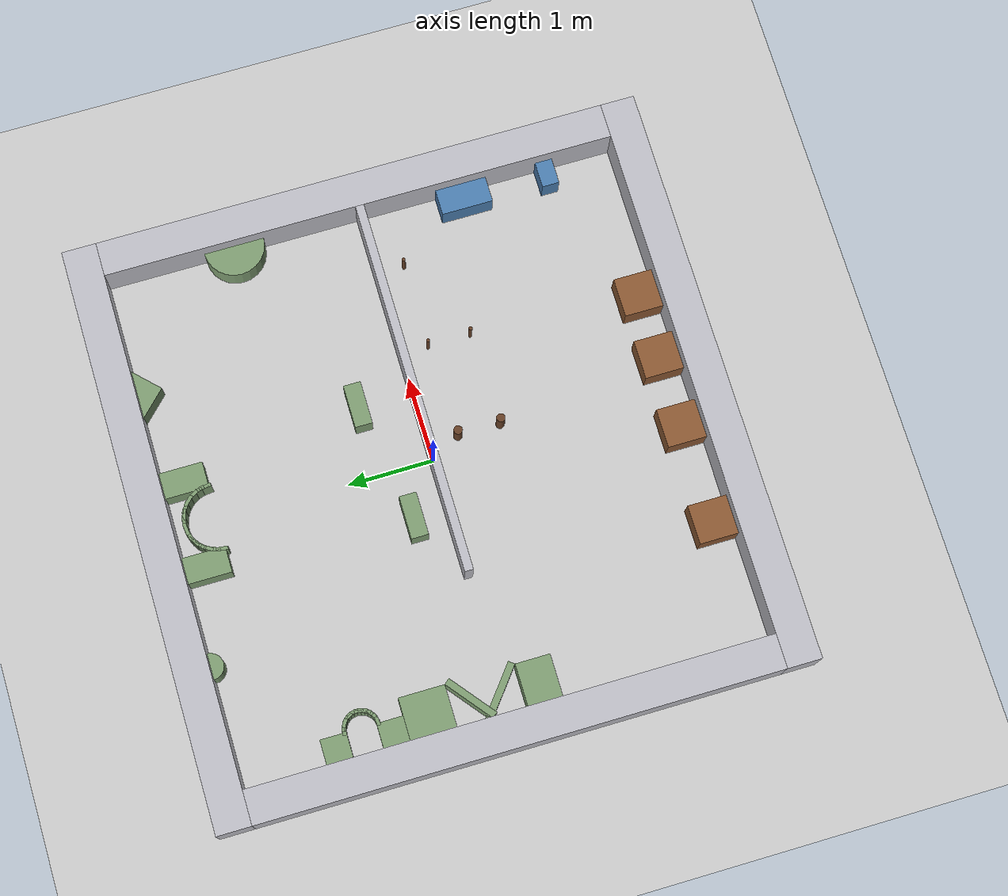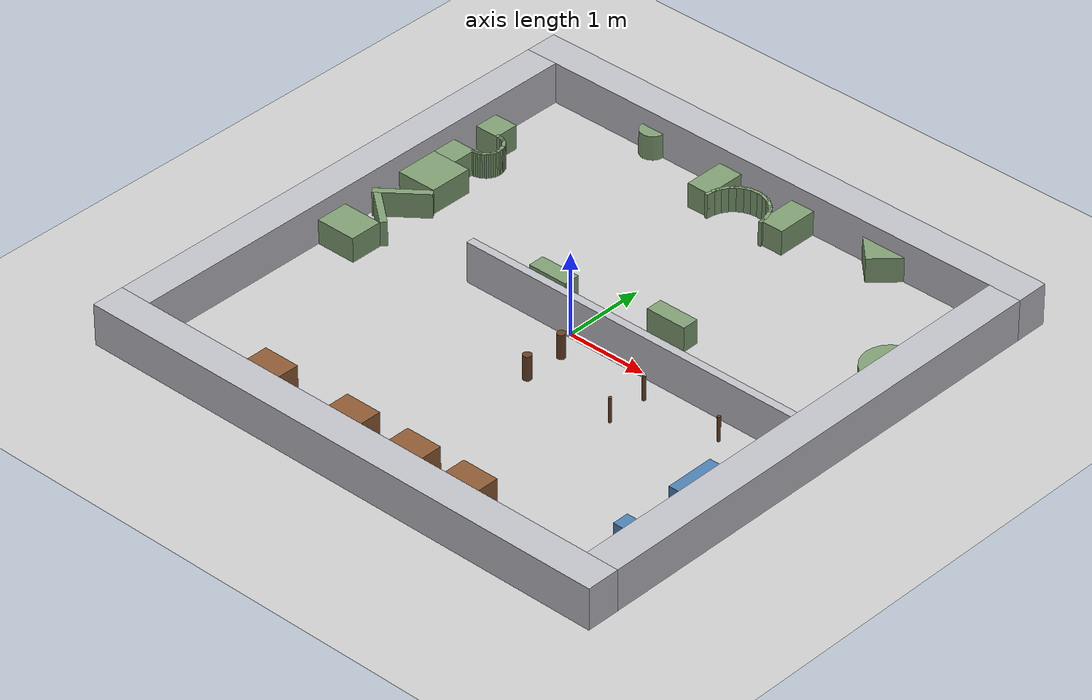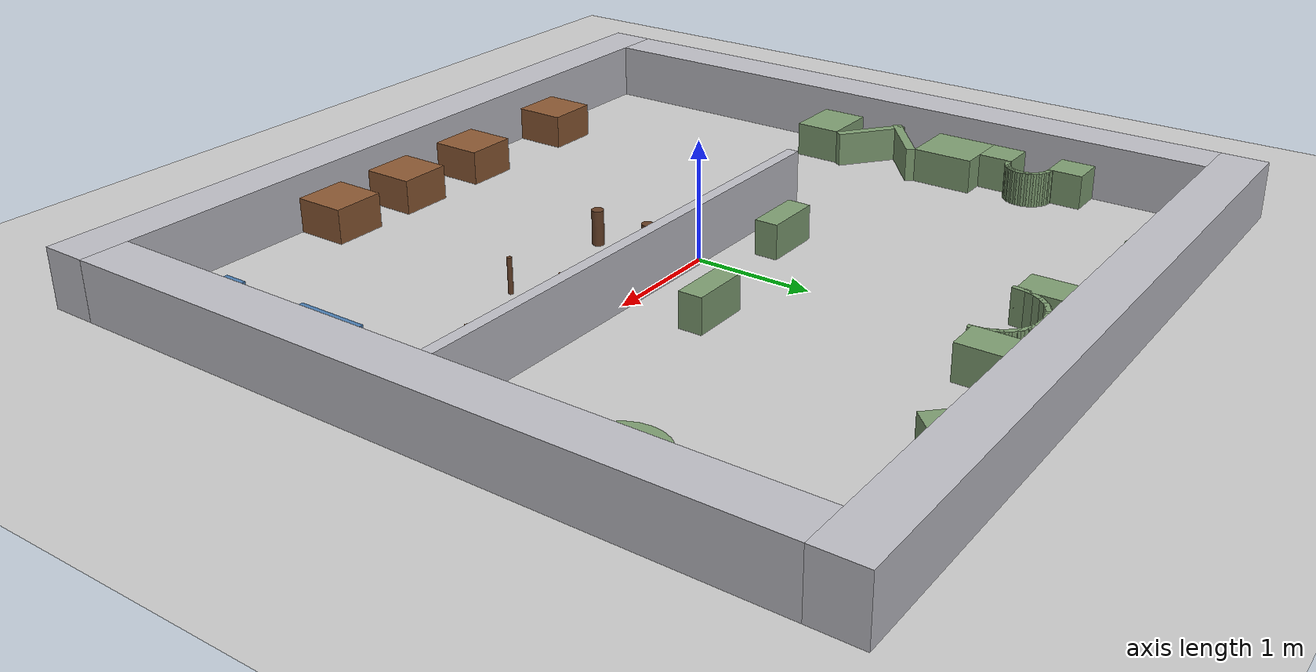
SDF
<?xml version="1.0" ?>
<sdf version="1.10">
  <world name="default">
    <scene>
      <shadows>false</shadows>
      <ambient>0.4 0.4 0.4 1</ambient>
      <background>0.7 0.7 0.7 1</background>
    </scene>
    <gui fullscreen="false">
      <camera name="user_camera">
        <pose>-6 0 7 0 0.85 0</pose>
        <view_controller>orbit</view_controller>
        <projection_type>perspective</projection_type>
      </camera>
    </gui>
    <physics type="ode">
      <real_time_update_rate>1000</real_time_update_rate>
      <max_step_size>0.001</max_step_size>
      <real_time_factor>1</real_time_factor>
      <ode>
        <solver>
          <type>quick</type>
          <iters>150</iters>
          <precon_iters>0</precon_iters>
          <sor>1.4</sor>
          <use_dynamic_moi_rescaling>true</use_dynamic_moi_rescaling>
        </solver>
        <constraints>
          <cfm>1e-05</cfm>
          <erp>0.2</erp>
          <contact_max_correcting_vel>2000</contact_max_correcting_vel>
          <contact_surface_layer>0.01</contact_surface_layer>
        </constraints>
      </ode>
    </physics>
    <plugin name="gz::sim::systems::Physics" filename="gz-sim-physics-system"/>
    <plugin name="gz::sim::systems::UserCommands" filename="gz-sim-user-commands-system"/>
    <plugin name="gz::sim::systems::SceneBroadcaster" filename="gz-sim-scene-broadcaster-system"/>
    <plugin name="gz::sim::systems::Sensors" filename="gz-sim-sensors-system">
      <render_engine>ogre2</render_engine>
    </plugin>
    <plugin name="gz::sim::systems::Imu" filename="gz-sim-imu-system"/>
    <plugin name="gz::sim::systems::Contact" filename="gz-sim-contact-system"/>
    <gravity>0 0 -9.8</gravity>
    <atmosphere type="adiabatic"/>

    <include>
      <uri>model://ground plane</uri>
      <name>ground_plane</name>
      <pose>0 0 0 0 0 0</pose>
    </include>

    <light name="sun" type="directional">
      <cast_shadows>false</cast_shadows>
      <pose>0 0 10 0 0 0</pose>
      <diffuse>0.8 0.8 0.8 1</diffuse>
      <specular>0.2 0.2 0.2 1</specular>
      <intensity>3</intensity>
      <direction>-0.5 0.1 -0.9</direction>
    </light>
    <model name="wall_south">
      <static>true</static>
      <link name="link">
        <collision name="col_0">
          <pose>0.0000 -3.2000 0.250 0 0 0.00000</pose>
          <geometry><box><size>6.8000 0.4000 0.500</size></box></geometry>
        </collision>
        <visual name="vis_0">
          <pose>0.0000 -3.2000 0.250 0 0 0.00000</pose>
          <geometry><box><size>6.8000 0.4000 0.500</size></box></geometry>
          <material><diffuse>0.75 0.75 0.78 1</diffuse><ambient>0.75 0.75 0.78 1</ambient></material>
        </visual>
      </link>
    </model>

    <model name="wall_north">
      <static>true</static>
      <link name="link">
        <collision name="col_0">
          <pose>0.0000 3.2000 0.250 0 0 0.00000</pose>
          <geometry><box><size>6.8000 0.4000 0.500</size></box></geometry>
        </collision>
        <visual name="vis_0">
          <pose>0.0000 3.2000 0.250 0 0 0.00000</pose>
          <geometry><box><size>6.8000 0.4000 0.500</size></box></geometry>
          <material><diffuse>0.75 0.75 0.78 1</diffuse><ambient>0.75 0.75 0.78 1</ambient></material>
        </visual>
      </link>
    </model>

    <model name="wall_west">
      <static>true</static>
      <link name="link">
        <collision name="col_0">
          <pose>-3.2000 0.0000 0.250 0 0 0.00000</pose>
          <geometry><box><size>0.4000 6.0000 0.500</size></box></geometry>
        </collision>
        <visual name="vis_0">
          <pose>-3.2000 0.0000 0.250 0 0 0.00000</pose>
          <geometry><box><size>0.4000 6.0000 0.500</size></box></geometry>
          <material><diffuse>0.75 0.75 0.78 1</diffuse><ambient>0.75 0.75 0.78 1</ambient></material>
        </visual>
      </link>
    </model>

    <model name="wall_east">
      <static>true</static>
      <link name="link">
        <collision name="col_0">
          <pose>3.2000 0.0000 0.250 0 0 0.00000</pose>
          <geometry><box><size>0.4000 6.0000 0.500</size></box></geometry>
        </collision>
        <visual name="vis_0">
          <pose>3.2000 0.0000 0.250 0 0 0.00000</pose>
          <geometry><box><size>0.4000 6.0000 0.500</size></box></geometry>
          <material><diffuse>0.75 0.75 0.78 1</diffuse><ambient>0.75 0.75 0.78 1</ambient></material>
        </visual>
      </link>
    </model>

    <model name="A1_tooth">
      <static>true</static>
      <link name="link">
        <collision name="col_0">
          <pose>-1.5750 -2.7750 0.150 0 0 0.00000</pose>
          <geometry><box><size>0.4500 0.4500 0.300</size></box></geometry>
        </collision>
        <visual name="vis_0">
          <pose>-1.5750 -2.7750 0.150 0 0 0.00000</pose>
          <geometry><box><size>0.4500 0.4500 0.300</size></box></geometry>
          <material><diffuse>0.55 0.35 0.20 1</diffuse><ambient>0.55 0.35 0.20 1</ambient></material>
        </visual>
      </link>
    </model>

    <model name="A2_tooth">
      <static>true</static>
      <link name="link">
        <collision name="col_0">
          <pose>-0.4270 -2.7750 0.150 0 0 0.00000</pose>
          <geometry><box><size>0.4500 0.4500 0.300</size></box></geometry>
        </collision>
        <visual name="vis_0">
          <pose>-0.4270 -2.7750 0.150 0 0 0.00000</pose>
          <geometry><box><size>0.4500 0.4500 0.300</size></box></geometry>
          <material><diffuse>0.55 0.35 0.20 1</diffuse><ambient>0.55 0.35 0.20 1</ambient></material>
        </visual>
      </link>
    </model>

    <model name="A3_tooth">
      <static>true</static>
      <link name="link">
        <collision name="col_0">
          <pose>0.4069 -2.7750 0.150 0 0 0.00000</pose>
          <geometry><box><size>0.4500 0.4500 0.300</size></box></geometry>
        </collision>
        <visual name="vis_0">
          <pose>0.4069 -2.7750 0.150 0 0 0.00000</pose>
          <geometry><box><size>0.4500 0.4500 0.300</size></box></geometry>
          <material><diffuse>0.55 0.35 0.20 1</diffuse><ambient>0.55 0.35 0.20 1</ambient></material>
        </visual>
      </link>
    </model>

    <model name="A4_tooth">
      <static>true</static>
      <link name="link">
        <collision name="col_0">
          <pose>1.1710 -2.7750 0.150 0 0 0.00000</pose>
          <geometry><box><size>0.4500 0.4500 0.300</size></box></geometry>
        </collision>
        <visual name="vis_0">
          <pose>1.1710 -2.7750 0.150 0 0 0.00000</pose>
          <geometry><box><size>0.4500 0.4500 0.300</size></box></geometry>
          <material><diffuse>0.55 0.35 0.20 1</diffuse><ambient>0.55 0.35 0.20 1</ambient></material>
        </visual>
      </link>
    </model>

    <model name="peninsula">
      <static>true</static>
      <link name="link">
        <collision name="col_0">
          <pose>0.8000 0.0000 0.250 0 0 0.00000</pose>
          <geometry><box><size>4.4000 0.1000 0.500</size></box></geometry>
        </collision>
        <visual name="vis_0">
          <pose>0.8000 0.0000 0.250 0 0 0.00000</pose>
          <geometry><box><size>4.4000 0.1000 0.500</size></box></geometry>
          <material><diffuse>0.75 0.75 0.78 1</diffuse><ambient>0.75 0.75 0.78 1</ambient></material>
        </visual>
      </link>
    </model>

    <model name="B1_block_small">
      <static>true</static>
      <link name="link">
        <collision name="col_0">
          <pose>2.8500 -2.2000 0.150 0 0 0.00000</pose>
          <geometry><box><size>0.3000 0.2000 0.300</size></box></geometry>
        </collision>
        <visual name="vis_0">
          <pose>2.8500 -2.2000 0.150 0 0 0.00000</pose>
          <geometry><box><size>0.3000 0.2000 0.300</size></box></geometry>
          <material><diffuse>0.30 0.50 0.70 1</diffuse><ambient>0.30 0.50 0.70 1</ambient></material>
        </visual>
      </link>
    </model>

    <model name="B2_block_wide">
      <static>true</static>
      <link name="link">
        <collision name="col_0">
          <pose>2.8500 -1.2000 0.150 0 0 0.00000</pose>
          <geometry><box><size>0.3000 0.6000 0.300</size></box></geometry>
        </collision>
        <visual name="vis_0">
          <pose>2.8500 -1.2000 0.150 0 0 0.00000</pose>
          <geometry><box><size>0.3000 0.6000 0.300</size></box></geometry>
          <material><diffuse>0.30 0.50 0.70 1</diffuse><ambient>0.30 0.50 0.70 1</ambient></material>
        </visual>
      </link>
    </model>

    <model name="B3_leg">
      <static>true</static>
      <link name="link">
        <collision name="col_0">
          <pose>2.3000 -0.3200 0.150 0 0 0</pose>
          <geometry><cylinder><radius>0.0200</radius><length>0.300</length></cylinder></geometry>
        </collision>
        <visual name="vis_0">
          <pose>2.3000 -0.3200 0.150 0 0 0</pose>
          <geometry><cylinder><radius>0.0200</radius><length>0.300</length></cylinder></geometry>
          <material><diffuse>0.40 0.25 0.15 1</diffuse><ambient>0.40 0.25 0.15 1</ambient></material>
        </visual>
      </link>
    </model>

    <model name="B4_legs_pair">
      <static>true</static>
      <link name="link">
        <collision name="col_0">
          <pose>1.3000 -0.3200 0.150 0 0 0</pose>
          <geometry><cylinder><radius>0.0200</radius><length>0.300</length></cylinder></geometry>
        </collision>
        <visual name="vis_0">
          <pose>1.3000 -0.3200 0.150 0 0 0</pose>
          <geometry><cylinder><radius>0.0200</radius><length>0.300</length></cylinder></geometry>
          <material><diffuse>0.40 0.25 0.15 1</diffuse><ambient>0.40 0.25 0.15 1</ambient></material>
        </visual>
        <collision name="col_1">
          <pose>1.3000 -0.8200 0.150 0 0 0</pose>
          <geometry><cylinder><radius>0.0200</radius><length>0.300</length></cylinder></geometry>
        </collision>
        <visual name="vis_1">
          <pose>1.3000 -0.8200 0.150 0 0 0</pose>
          <geometry><cylinder><radius>0.0200</radius><length>0.300</length></cylinder></geometry>
          <material><diffuse>0.40 0.25 0.15 1</diffuse><ambient>0.40 0.25 0.15 1</ambient></material>
        </visual>
      </link>
    </model>

    <model name="B5_thick_legs_pair">
      <static>true</static>
      <link name="link">
        <collision name="col_0">
          <pose>0.2000 -0.3500 0.150 0 0 0</pose>
          <geometry><cylinder><radius>0.0500</radius><length>0.300</length></cylinder></geometry>
        </collision>
        <visual name="vis_0">
          <pose>0.2000 -0.3500 0.150 0 0 0</pose>
          <geometry><cylinder><radius>0.0500</radius><length>0.300</length></cylinder></geometry>
          <material><diffuse>0.40 0.25 0.15 1</diffuse><ambient>0.40 0.25 0.15 1</ambient></material>
        </visual>
        <collision name="col_1">
          <pose>0.2000 -0.8500 0.150 0 0 0</pose>
          <geometry><cylinder><radius>0.0500</radius><length>0.300</length></cylinder></geometry>
        </collision>
        <visual name="vis_1">
          <pose>0.2000 -0.8500 0.150 0 0 0</pose>
          <geometry><cylinder><radius>0.0500</radius><length>0.300</length></cylinder></geometry>
          <material><diffuse>0.40 0.25 0.15 1</diffuse><ambient>0.40 0.25 0.15 1</ambient></material>
        </visual>
      </link>
    </model>

    <model name="C2_block_gap_025">
      <static>true</static>
      <link name="link">
        <collision name="col_0">
          <pose>-0.6000 0.4000 0.150 0 0 0.00000</pose>
          <geometry><box><size>0.5000 0.2000 0.300</size></box></geometry>
        </collision>
        <visual name="vis_0">
          <pose>-0.6000 0.4000 0.150 0 0 0.00000</pose>
          <geometry><box><size>0.5000 0.2000 0.300</size></box></geometry>
          <material><diffuse>0.50 0.62 0.45 1</diffuse><ambient>0.50 0.62 0.45 1</ambient></material>
        </visual>
      </link>
    </model>

    <model name="C3_block_gap_050">
      <static>true</static>
      <link name="link">
        <collision name="col_0">
          <pose>0.8000 0.6500 0.150 0 0 0.00000</pose>
          <geometry><box><size>0.5000 0.2000 0.300</size></box></geometry>
        </collision>
        <visual name="vis_0">
          <pose>0.8000 0.6500 0.150 0 0 0.00000</pose>
          <geometry><box><size>0.5000 0.2000 0.300</size></box></geometry>
          <material><diffuse>0.50 0.62 0.45 1</diffuse><ambient>0.50 0.62 0.45 1</ambient></material>
        </visual>
      </link>
    </model>

    <model name="C4_convex_R035">
      <static>true</static>
      <link name="link">
        <collision name="col_0">
          <pose>3.0000 1.5000 0.150 0 0 0</pose>
          <geometry><cylinder><radius>0.3500</radius><length>0.300</length></cylinder></geometry>
        </collision>
        <visual name="vis_0">
          <pose>3.0000 1.5000 0.150 0 0 0</pose>
          <geometry><cylinder><radius>0.3500</radius><length>0.300</length></cylinder></geometry>
          <material><diffuse>0.50 0.62 0.45 1</diffuse><ambient>0.50 0.62 0.45 1</ambient></material>
        </visual>
      </link>
    </model>

    <model name="C1_wedge">
      <static>true</static>
      <link name="link">
        <collision name="col_0">
          <pose>1.6000 3.0000 0.150 0 0 0.78540</pose>
          <geometry><box><size>0.4000 0.4000 0.300</size></box></geometry>
        </collision>
        <visual name="vis_0">
          <pose>1.6000 3.0000 0.150 0 0 0.78540</pose>
          <geometry><box><size>0.4000 0.4000 0.300</size></box></geometry>
          <material><diffuse>0.50 0.62 0.45 1</diffuse><ambient>0.50 0.62 0.45 1</ambient></material>
        </visual>
      </link>
    </model>

    <model name="C5_concave_R035">
      <static>true</static>
      <link name="link">
        <collision name="col_0">
          <pose>0.5000 2.7500 0.150 0 0 0.00000</pose>
          <geometry><box><size>0.3000 0.5000 0.300</size></box></geometry>
        </collision>
        <visual name="vis_0">
          <pose>0.5000 2.7500 0.150 0 0 0.00000</pose>
          <geometry><box><size>0.3000 0.5000 0.300</size></box></geometry>
          <material><diffuse>0.50 0.62 0.45 1</diffuse><ambient>0.50 0.62 0.45 1</ambient></material>
        </visual>
        <collision name="col_1">
          <pose>-0.5000 2.7500 0.150 0 0 0.00000</pose>
          <geometry><box><size>0.3000 0.5000 0.300</size></box></geometry>
        </collision>
        <visual name="vis_1">
          <pose>-0.5000 2.7500 0.150 0 0 0.00000</pose>
          <geometry><box><size>0.3000 0.5000 0.300</size></box></geometry>
          <material><diffuse>0.50 0.62 0.45 1</diffuse><ambient>0.50 0.62 0.45 1</ambient></material>
        </visual>
        <collision name="col_2">
          <pose>0.3655 2.5412 0.150 0 0 1.68300</pose>
          <geometry><box><size>0.1384 0.0400 0.300</size></box></geometry>
        </collision>
        <visual name="vis_2">
          <pose>0.3655 2.5412 0.150 0 0 1.68300</pose>
          <geometry><box><size>0.1384 0.0400 0.300</size></box></geometry>
          <material><diffuse>0.50 0.62 0.45 1</diffuse><ambient>0.50 0.62 0.45 1</ambient></material>
        </visual>
        <collision name="col_3">
          <pose>0.3472 2.6215 0.150 0 0 1.90740</pose>
          <geometry><box><size>0.1384 0.0400 0.300</size></box></geometry>
        </collision>
        <visual name="vis_3">
          <pose>0.3472 2.6215 0.150 0 0 1.90740</pose>
          <geometry><box><size>0.1384 0.0400 0.300</size></box></geometry>
          <material><diffuse>0.50 0.62 0.45 1</diffuse><ambient>0.50 0.62 0.45 1</ambient></material>
        </visual>
        <collision name="col_4">
          <pose>0.3114 2.6957 0.150 0 0 2.13180</pose>
          <geometry><box><size>0.1384 0.0400 0.300</size></box></geometry>
        </collision>
        <visual name="vis_4">
          <pose>0.3114 2.6957 0.150 0 0 2.13180</pose>
          <geometry><box><size>0.1384 0.0400 0.300</size></box></geometry>
          <material><diffuse>0.50 0.62 0.45 1</diffuse><ambient>0.50 0.62 0.45 1</ambient></material>
        </visual>
        <collision name="col_5">
          <pose>0.2601 2.7601 0.150 0 0 2.35619</pose>
          <geometry><box><size>0.1384 0.0400 0.300</size></box></geometry>
        </collision>
        <visual name="vis_5">
          <pose>0.2601 2.7601 0.150 0 0 2.35619</pose>
          <geometry><box><size>0.1384 0.0400 0.300</size></box></geometry>
          <material><diffuse>0.50 0.62 0.45 1</diffuse><ambient>0.50 0.62 0.45 1</ambient></material>
        </visual>
        <collision name="col_6">
          <pose>0.1957 2.8114 0.150 0 0 2.58059</pose>
          <geometry><box><size>0.1384 0.0400 0.300</size></box></geometry>
        </collision>
        <visual name="vis_6">
          <pose>0.1957 2.8114 0.150 0 0 2.58059</pose>
          <geometry><box><size>0.1384 0.0400 0.300</size></box></geometry>
          <material><diffuse>0.50 0.62 0.45 1</diffuse><ambient>0.50 0.62 0.45 1</ambient></material>
        </visual>
        <collision name="col_7">
          <pose>0.1215 2.8472 0.150 0 0 2.80499</pose>
          <geometry><box><size>0.1384 0.0400 0.300</size></box></geometry>
        </collision>
        <visual name="vis_7">
          <pose>0.1215 2.8472 0.150 0 0 2.80499</pose>
          <geometry><box><size>0.1384 0.0400 0.300</size></box></geometry>
          <material><diffuse>0.50 0.62 0.45 1</diffuse><ambient>0.50 0.62 0.45 1</ambient></material>
        </visual>
        <collision name="col_8">
          <pose>0.0412 2.8655 0.150 0 0 3.02939</pose>
          <geometry><box><size>0.1384 0.0400 0.300</size></box></geometry>
        </collision>
        <visual name="vis_8">
          <pose>0.0412 2.8655 0.150 0 0 3.02939</pose>
          <geometry><box><size>0.1384 0.0400 0.300</size></box></geometry>
          <material><diffuse>0.50 0.62 0.45 1</diffuse><ambient>0.50 0.62 0.45 1</ambient></material>
        </visual>
        <collision name="col_9">
          <pose>-0.0412 2.8655 0.150 0 0 -3.02939</pose>
          <geometry><box><size>0.1384 0.0400 0.300</size></box></geometry>
        </collision>
        <visual name="vis_9">
          <pose>-0.0412 2.8655 0.150 0 0 -3.02939</pose>
          <geometry><box><size>0.1384 0.0400 0.300</size></box></geometry>
          <material><diffuse>0.50 0.62 0.45 1</diffuse><ambient>0.50 0.62 0.45 1</ambient></material>
        </visual>
        <collision name="col_10">
          <pose>-0.1215 2.8472 0.150 0 0 -2.80499</pose>
          <geometry><box><size>0.1384 0.0400 0.300</size></box></geometry>
        </collision>
        <visual name="vis_10">
          <pose>-0.1215 2.8472 0.150 0 0 -2.80499</pose>
          <geometry><box><size>0.1384 0.0400 0.300</size></box></geometry>
          <material><diffuse>0.50 0.62 0.45 1</diffuse><ambient>0.50 0.62 0.45 1</ambient></material>
        </visual>
        <collision name="col_11">
          <pose>-0.1957 2.8114 0.150 0 0 -2.58059</pose>
          <geometry><box><size>0.1384 0.0400 0.300</size></box></geometry>
        </collision>
        <visual name="vis_11">
          <pose>-0.1957 2.8114 0.150 0 0 -2.58059</pose>
          <geometry><box><size>0.1384 0.0400 0.300</size></box></geometry>
          <material><diffuse>0.50 0.62 0.45 1</diffuse><ambient>0.50 0.62 0.45 1</ambient></material>
        </visual>
        <collision name="col_12">
          <pose>-0.2601 2.7601 0.150 0 0 -2.35619</pose>
          <geometry><box><size>0.1384 0.0400 0.300</size></box></geometry>
        </collision>
        <visual name="vis_12">
          <pose>-0.2601 2.7601 0.150 0 0 -2.35619</pose>
          <geometry><box><size>0.1384 0.0400 0.300</size></box></geometry>
          <material><diffuse>0.50 0.62 0.45 1</diffuse><ambient>0.50 0.62 0.45 1</ambient></material>
        </visual>
        <collision name="col_13">
          <pose>-0.3114 2.6957 0.150 0 0 -2.13180</pose>
          <geometry><box><size>0.1384 0.0400 0.300</size></box></geometry>
        </collision>
        <visual name="vis_13">
          <pose>-0.3114 2.6957 0.150 0 0 -2.13180</pose>
          <geometry><box><size>0.1384 0.0400 0.300</size></box></geometry>
          <material><diffuse>0.50 0.62 0.45 1</diffuse><ambient>0.50 0.62 0.45 1</ambient></material>
        </visual>
        <collision name="col_14">
          <pose>-0.3472 2.6215 0.150 0 0 -1.90740</pose>
          <geometry><box><size>0.1384 0.0400 0.300</size></box></geometry>
        </collision>
        <visual name="vis_14">
          <pose>-0.3472 2.6215 0.150 0 0 -1.90740</pose>
          <geometry><box><size>0.1384 0.0400 0.300</size></box></geometry>
          <material><diffuse>0.50 0.62 0.45 1</diffuse><ambient>0.50 0.62 0.45 1</ambient></material>
        </visual>
        <collision name="col_15">
          <pose>-0.3655 2.5412 0.150 0 0 -1.68300</pose>
          <geometry><box><size>0.1384 0.0400 0.300</size></box></geometry>
        </collision>
        <visual name="vis_15">
          <pose>-0.3655 2.5412 0.150 0 0 -1.68300</pose>
          <geometry><box><size>0.1384 0.0400 0.300</size></box></geometry>
          <material><diffuse>0.50 0.62 0.45 1</diffuse><ambient>0.50 0.62 0.45 1</ambient></material>
        </visual>
      </link>
    </model>

    <model name="C6_convex_R015">
      <static>true</static>
      <link name="link">
        <collision name="col_0">
          <pose>-1.6000 3.0000 0.150 0 0 0</pose>
          <geometry><cylinder><radius>0.1500</radius><length>0.300</length></cylinder></geometry>
        </collision>
        <visual name="vis_0">
          <pose>-1.6000 3.0000 0.150 0 0 0</pose>
          <geometry><cylinder><radius>0.1500</radius><length>0.300</length></cylinder></geometry>
          <material><diffuse>0.50 0.62 0.45 1</diffuse><ambient>0.50 0.62 0.45 1</ambient></material>
        </visual>
      </link>
    </model>

    <model name="C7_concave_R017">
      <static>true</static>
      <link name="link">
        <collision name="col_0">
          <pose>-2.8500 1.9200 0.150 0 0 0.00000</pose>
          <geometry><box><size>0.3000 0.3000 0.300</size></box></geometry>
        </collision>
        <visual name="vis_0">
          <pose>-2.8500 1.9200 0.150 0 0 0.00000</pose>
          <geometry><box><size>0.3000 0.3000 0.300</size></box></geometry>
          <material><diffuse>0.50 0.62 0.45 1</diffuse><ambient>0.50 0.62 0.45 1</ambient></material>
        </visual>
        <collision name="col_1">
          <pose>-2.8500 1.2800 0.150 0 0 0.00000</pose>
          <geometry><box><size>0.3000 0.3000 0.300</size></box></geometry>
        </collision>
        <visual name="vis_1">
          <pose>-2.8500 1.2800 0.150 0 0 0.00000</pose>
          <geometry><box><size>0.3000 0.3000 0.300</size></box></geometry>
          <material><diffuse>0.50 0.62 0.45 1</diffuse><ambient>0.50 0.62 0.45 1</ambient></material>
        </visual>
        <collision name="col_2">
          <pose>-2.6788 1.7877 0.150 0 0 -1.68300</pose>
          <geometry><box><size>0.0400 0.0981 0.300</size></box></geometry>
        </collision>
        <visual name="vis_2">
          <pose>-2.6788 1.7877 0.150 0 0 -1.68300</pose>
          <geometry><box><size>0.0400 0.0981 0.300</size></box></geometry>
          <material><diffuse>0.50 0.62 0.45 1</diffuse><ambient>0.50 0.62 0.45 1</ambient></material>
        </visual>
        <collision name="col_3">
          <pose>-2.6376 1.7783 0.150 0 0 -1.90740</pose>
          <geometry><box><size>0.0400 0.0981 0.300</size></box></geometry>
        </collision>
        <visual name="vis_3">
          <pose>-2.6376 1.7783 0.150 0 0 -1.90740</pose>
          <geometry><box><size>0.0400 0.0981 0.300</size></box></geometry>
          <material><diffuse>0.50 0.62 0.45 1</diffuse><ambient>0.50 0.62 0.45 1</ambient></material>
        </visual>
        <collision name="col_4">
          <pose>-2.5995 1.7600 0.150 0 0 -2.13180</pose>
          <geometry><box><size>0.0400 0.0981 0.300</size></box></geometry>
        </collision>
        <visual name="vis_4">
          <pose>-2.5995 1.7600 0.150 0 0 -2.13180</pose>
          <geometry><box><size>0.0400 0.0981 0.300</size></box></geometry>
          <material><diffuse>0.50 0.62 0.45 1</diffuse><ambient>0.50 0.62 0.45 1</ambient></material>
        </visual>
        <collision name="col_5">
          <pose>-2.5664 1.7336 0.150 0 0 -2.35619</pose>
          <geometry><box><size>0.0400 0.0981 0.300</size></box></geometry>
        </collision>
        <visual name="vis_5">
          <pose>-2.5664 1.7336 0.150 0 0 -2.35619</pose>
          <geometry><box><size>0.0400 0.0981 0.300</size></box></geometry>
          <material><diffuse>0.50 0.62 0.45 1</diffuse><ambient>0.50 0.62 0.45 1</ambient></material>
        </visual>
        <collision name="col_6">
          <pose>-2.5400 1.7005 0.150 0 0 -2.58059</pose>
          <geometry><box><size>0.0400 0.0981 0.300</size></box></geometry>
        </collision>
        <visual name="vis_6">
          <pose>-2.5400 1.7005 0.150 0 0 -2.58059</pose>
          <geometry><box><size>0.0400 0.0981 0.300</size></box></geometry>
          <material><diffuse>0.50 0.62 0.45 1</diffuse><ambient>0.50 0.62 0.45 1</ambient></material>
        </visual>
        <collision name="col_7">
          <pose>-2.5217 1.6624 0.150 0 0 -2.80499</pose>
          <geometry><box><size>0.0400 0.0981 0.300</size></box></geometry>
        </collision>
        <visual name="vis_7">
          <pose>-2.5217 1.6624 0.150 0 0 -2.80499</pose>
          <geometry><box><size>0.0400 0.0981 0.300</size></box></geometry>
          <material><diffuse>0.50 0.62 0.45 1</diffuse><ambient>0.50 0.62 0.45 1</ambient></material>
        </visual>
        <collision name="col_8">
          <pose>-2.5123 1.6212 0.150 0 0 -3.02939</pose>
          <geometry><box><size>0.0400 0.0981 0.300</size></box></geometry>
        </collision>
        <visual name="vis_8">
          <pose>-2.5123 1.6212 0.150 0 0 -3.02939</pose>
          <geometry><box><size>0.0400 0.0981 0.300</size></box></geometry>
          <material><diffuse>0.50 0.62 0.45 1</diffuse><ambient>0.50 0.62 0.45 1</ambient></material>
        </visual>
        <collision name="col_9">
          <pose>-2.5123 1.5788 0.150 0 0 3.02939</pose>
          <geometry><box><size>0.0400 0.0981 0.300</size></box></geometry>
        </collision>
        <visual name="vis_9">
          <pose>-2.5123 1.5788 0.150 0 0 3.02939</pose>
          <geometry><box><size>0.0400 0.0981 0.300</size></box></geometry>
          <material><diffuse>0.50 0.62 0.45 1</diffuse><ambient>0.50 0.62 0.45 1</ambient></material>
        </visual>
        <collision name="col_10">
          <pose>-2.5217 1.5376 0.150 0 0 2.80499</pose>
          <geometry><box><size>0.0400 0.0981 0.300</size></box></geometry>
        </collision>
        <visual name="vis_10">
          <pose>-2.5217 1.5376 0.150 0 0 2.80499</pose>
          <geometry><box><size>0.0400 0.0981 0.300</size></box></geometry>
          <material><diffuse>0.50 0.62 0.45 1</diffuse><ambient>0.50 0.62 0.45 1</ambient></material>
        </visual>
        <collision name="col_11">
          <pose>-2.5400 1.4995 0.150 0 0 2.58059</pose>
          <geometry><box><size>0.0400 0.0981 0.300</size></box></geometry>
        </collision>
        <visual name="vis_11">
          <pose>-2.5400 1.4995 0.150 0 0 2.58059</pose>
          <geometry><box><size>0.0400 0.0981 0.300</size></box></geometry>
          <material><diffuse>0.50 0.62 0.45 1</diffuse><ambient>0.50 0.62 0.45 1</ambient></material>
        </visual>
        <collision name="col_12">
          <pose>-2.5664 1.4664 0.150 0 0 2.35619</pose>
          <geometry><box><size>0.0400 0.0981 0.300</size></box></geometry>
        </collision>
        <visual name="vis_12">
          <pose>-2.5664 1.4664 0.150 0 0 2.35619</pose>
          <geometry><box><size>0.0400 0.0981 0.300</size></box></geometry>
          <material><diffuse>0.50 0.62 0.45 1</diffuse><ambient>0.50 0.62 0.45 1</ambient></material>
        </visual>
        <collision name="col_13">
          <pose>-2.5995 1.4400 0.150 0 0 2.13180</pose>
          <geometry><box><size>0.0400 0.0981 0.300</size></box></geometry>
        </collision>
        <visual name="vis_13">
          <pose>-2.5995 1.4400 0.150 0 0 2.13180</pose>
          <geometry><box><size>0.0400 0.0981 0.300</size></box></geometry>
          <material><diffuse>0.50 0.62 0.45 1</diffuse><ambient>0.50 0.62 0.45 1</ambient></material>
        </visual>
        <collision name="col_14">
          <pose>-2.6376 1.4217 0.150 0 0 1.90740</pose>
          <geometry><box><size>0.0400 0.0981 0.300</size></box></geometry>
        </collision>
        <visual name="vis_14">
          <pose>-2.6376 1.4217 0.150 0 0 1.90740</pose>
          <geometry><box><size>0.0400 0.0981 0.300</size></box></geometry>
          <material><diffuse>0.50 0.62 0.45 1</diffuse><ambient>0.50 0.62 0.45 1</ambient></material>
        </visual>
        <collision name="col_15">
          <pose>-2.6788 1.4123 0.150 0 0 1.68300</pose>
          <geometry><box><size>0.0400 0.0981 0.300</size></box></geometry>
        </collision>
        <visual name="vis_15">
          <pose>-2.6788 1.4123 0.150 0 0 1.68300</pose>
          <geometry><box><size>0.0400 0.0981 0.300</size></box></geometry>
          <material><diffuse>0.50 0.62 0.45 1</diffuse><ambient>0.50 0.62 0.45 1</ambient></material>
        </visual>
      </link>
    </model>

    <model name="C8_v_trap">
      <static>true</static>
      <link name="link">
        <collision name="col_0">
          <pose>-2.7500 0.8650 0.150 0 0 0.00000</pose>
          <geometry><box><size>0.5000 0.5300 0.300</size></box></geometry>
        </collision>
        <visual name="vis_0">
          <pose>-2.7500 0.8650 0.150 0 0 0.00000</pose>
          <geometry><box><size>0.5000 0.5300 0.300</size></box></geometry>
          <material><diffuse>0.50 0.62 0.45 1</diffuse><ambient>0.50 0.62 0.45 1</ambient></material>
        </visual>
        <collision name="col_1">
          <pose>-2.7500 -0.4000 0.150 0 0 0.00000</pose>
          <geometry><box><size>0.5000 0.4000 0.300</size></box></geometry>
        </collision>
        <visual name="vis_1">
          <pose>-2.7500 -0.4000 0.150 0 0 0.00000</pose>
          <geometry><box><size>0.5000 0.4000 0.300</size></box></geometry>
          <material><diffuse>0.50 0.62 0.45 1</diffuse><ambient>0.50 0.62 0.45 1</ambient></material>
        </visual>
        <collision name="col_2">
          <pose>-2.7250 0.0312 0.150 0 0 2.46685</pose>
          <geometry><box><size>0.6403 0.0800 0.300</size></box></geometry>
        </collision>
        <visual name="vis_2">
          <pose>-2.7250 0.0312 0.150 0 0 2.46685</pose>
          <geometry><box><size>0.6403 0.0800 0.300</size></box></geometry>
          <material><diffuse>0.50 0.62 0.45 1</diffuse><ambient>0.50 0.62 0.45 1</ambient></material>
        </visual>
        <collision name="col_3">
          <pose>-2.7250 0.3688 0.150 0 0 0.67474</pose>
          <geometry><box><size>0.6403 0.0800 0.300</size></box></geometry>
        </collision>
        <visual name="vis_3">
          <pose>-2.7250 0.3688 0.150 0 0 0.67474</pose>
          <geometry><box><size>0.6403 0.0800 0.300</size></box></geometry>
          <material><diffuse>0.50 0.62 0.45 1</diffuse><ambient>0.50 0.62 0.45 1</ambient></material>
        </visual>
      </link>
    </model>
  </world>
</sdf>
